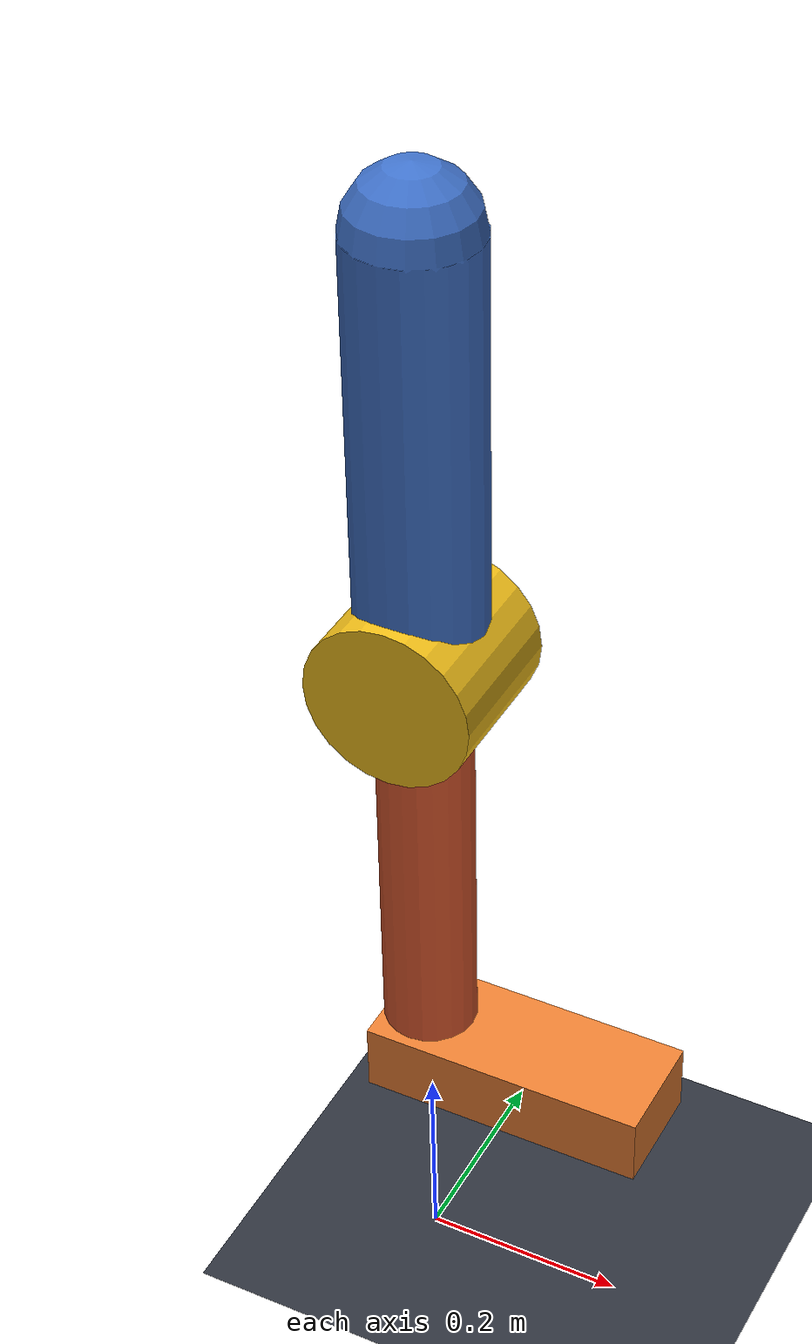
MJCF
<mujoco model="knee_like_pendulum">
  <compiler angle="radian" autolimits="true"/>
  <option timestep="0.002" gravity="0 0 -9.81" integrator="RK4"/>

  <visual>
    <headlight ambient="0.4 0.4 0.4" diffuse="0.8 0.8 0.8"/>
  </visual>

  <worldbody>
    <geom name="floor" type="plane" size="2 2 0.1"
          rgba="0.18 0.20 0.24 1"/>

    <!-- The thigh has no joint, so it is fixed to the world for this lesson. -->
    <body name="fixed_thigh" pos="0 0 0.72">
      <geom name="thigh_geom" type="capsule"
            fromto="0 0 0 0 0 0.42" size="0.06" mass="0"
            contype="0" conaffinity="0" rgba="0.25 0.45 0.80 1"/>
      <geom name="knee_hub" type="cylinder" size="0.08 0.07"
            euler="1.5708 0 0" mass="0" contype="0" conaffinity="0"
            rgba="0.95 0.75 0.10 1"/>

      <body name="shank_and_foot">
        <!-- 0 deg hangs straight down; positive angle flexes the knee. -->
        <joint name="knee_hinge" type="hinge" axis="0 1 0"
               range="-0.087266 2.094395" damping="0.30" armature="0.03"/>
        <geom name="shank_geom" type="capsule"
              fromto="0 0 0 0 0 -0.43" size="0.045" mass="3.0"
              contype="0" conaffinity="0" rgba="0.88 0.35 0.18 1"/>
        <geom name="foot_geom" type="box" pos="0.10 0 -0.45"
              size="0.14 0.055 0.035" mass="0.8"
              contype="0" conaffinity="0" rgba="0.92 0.50 0.20 1"/>
      </body>
    </body>
  </worldbody>

  <!-- gear=1 means one control unit equals one N·m at the knee. -->
  <actuator>
    <motor name="knee_motor" joint="knee_hinge" gear="1"
           ctrllimited="true" ctrlrange="-10 10"/>
  </actuator>
</mujoco>
